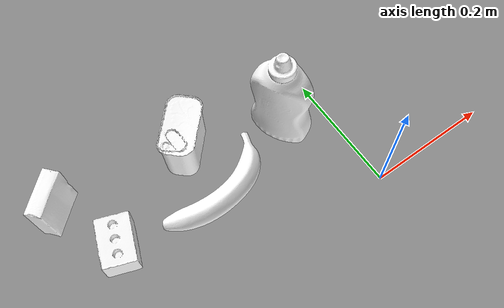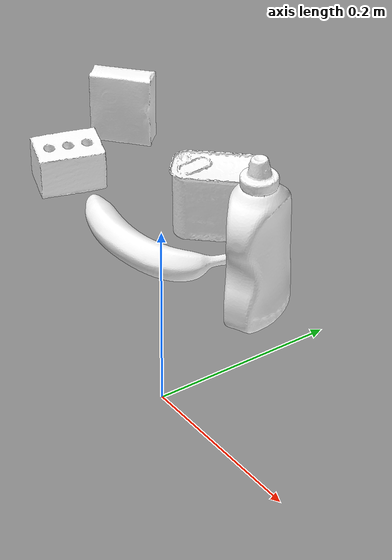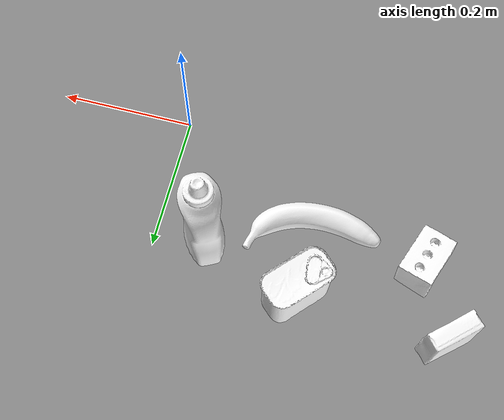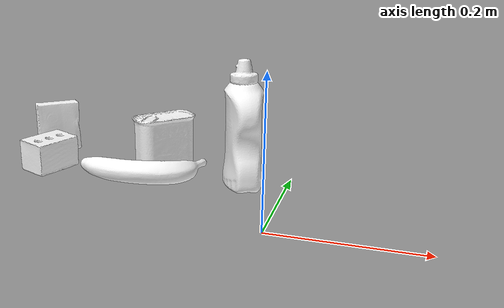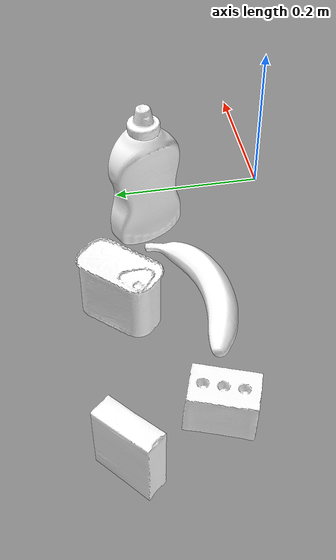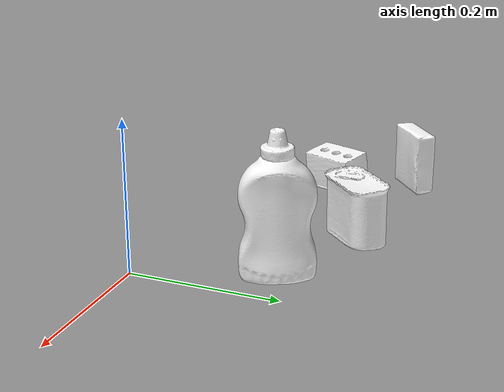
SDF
<sdf version="1.6">
  <world name="default">
    <gravity>0 0 -9.8</gravity>
    <model name="YcbBanana">
      <pose frame=''>-0.196 0.11794 0.005 0 0 -2.9845</pose>
      <contact>
        <lateral_friction>1</lateral_friction>
      </contact>
      <link name="baselink">
        <inertial>
          <mass>0.066</mass>
          <inertia>
            <ixx>1e-3</ixx>
            <ixy>0</ixy>
            <ixz>0</ixz>
            <iyy>1e-3</iyy>
            <iyz>0</iyz>
            <izz>1e-3</izz>
          </inertia>
        </inertial>
        <visual name="visual">
          <geometry>
            <mesh>
              <scale>1 1 1</scale>
              <uri>objects/YcbBanana/textured_simple_reoriented.obj</uri>
            </mesh>
          </geometry>
          <material>
            <ambient>1 1 1 1</ambient>
            <diffuse>1.00000 1.00000 1.000000 1</diffuse>
            <specular>.5 .5 .5 1</specular>
            <emissive>0 0 0 0</emissive>
          </material>
        </visual>
        <collision name="collision">
          <geometry>
            <mesh>
              <scale>1 1 1</scale>
              <uri>objects/YcbBanana/textured_simple_reoriented.obj</uri>
            </mesh>
          </geometry>
        </collision>
      </link>
    </model>
    <model name="YcbMustardBottle">
      <pose frame=''>-0.07479 0.161 0.08 0 0 1.9390639</pose>
      <contact>
        <lateral_friction>1</lateral_friction>
      </contact>
      <link name="baselink">
        <inertial>
          <mass>0.603</mass>
          <inertia>
            <ixx>1e-3</ixx>
            <ixy>0</ixy>
            <ixz>0</ixz>
            <iyy>1e-3</iyy>
            <iyz>0</iyz>
            <izz>1e-3</izz>
          </inertia>
        </inertial>
        <visual name="visual">
          <geometry>
            <mesh>
              <scale>1 1 1</scale>
              <uri>objects/YcbMustardBottle/textured_simple_reoriented.obj</uri>
            </mesh>
          </geometry>
          <material>
            <ambient>1 1 1 1</ambient>
            <diffuse>1.00000 1.00000 1.000000 1</diffuse>
            <specular>.5 .5 .5 1</specular>
            <emissive>0 0 0 0</emissive>
          </material>
        </visual>
        <collision name="collision">
          <geometry>
            <mesh>
              <scale>1 1 1</scale>
              <uri>objects/YcbMustardBottle/textured_simple_reoriented.obj</uri>
            </mesh>
          </geometry>
        </collision>
      </link>
    </model>
    <model name="YcbPottedMeatCan">
      <pose frame=''>-0.229 0.224 0.047 0 0 -1.7217114</pose>
      <contact>
        <lateral_friction>1</lateral_friction>
      </contact>
      <link name="baselink">
        <inertial>
          <pose frame=''>0 0 -0.2 0 0 0</pose>
          <mass>0.370</mass>
          <inertia>
            <ixx>1e-3</ixx>
            <ixy>0</ixy>
            <ixz>0</ixz>
            <iyy>1e-3</iyy>
            <iyz>0</iyz>
            <izz>1e-3</izz>
          </inertia>
        </inertial>
        <visual name="visual">
          <geometry>
            <mesh>
              <scale>1 1 1</scale>
              <uri>objects/YcbPottedMeatCan/textured_simple_reoriented.obj</uri>
            </mesh>
          </geometry>
          <material>
            <ambient>1 1 1 1</ambient>
            <diffuse>1.00000 1.00000 1.000000 1</diffuse>
            <specular>.5 .5 .5 1</specular>
            <emissive>0 0 0 0</emissive>
          </material>
        </visual>
        <collision name="collision">
          <geometry>
            <mesh>
              <scale>1 1 1</scale>
              <uri>objects/YcbPottedMeatCan/textured_simple_reoriented.obj</uri>
            </mesh>
          </geometry>
        </collision>
      </link>
    </model>
    <model name="YcbGelatinBox">
      <pose frame=''>-0.430 0.23849 0.01 0 0 0</pose>
      <contact>
        <lateral_friction>1</lateral_friction>
      </contact>
      <link name="baselink">
        <inertial>
          <mass>0.097</mass>
          <inertia>
            <ixx>1e-3</ixx>
            <ixy>0</ixy>
            <ixz>0</ixz>
            <iyy>1e-3</iyy>
            <iyz>0</iyz>
            <izz>1e-3</izz>
          </inertia>
        </inertial>
        <visual name="visual">
          <geometry>
            <mesh>
              <scale>1 1 1</scale>
              <uri>objects/YcbGelatinBox/textured_simple_reoriented.obj</uri>
            </mesh>
          </geometry>
          <material>
            <ambient>1 1 1 1</ambient>
            <diffuse>1.00000 1.00000 1.000000 1</diffuse>
            <specular>.5 .5 .5 1</specular>
            <emissive>0 0 0 0</emissive>
          </material>
        </visual>
        <collision name="collision">
          <geometry>
            <mesh>
              <scale>1 1 1</scale>
              <uri>objects/YcbGelatinBox/textured_simple_reoriented.obj</uri>
            </mesh>
          </geometry>
        </collision>
      </link>
    </model>
    <model name="YcbFoamBrick">
      <pose frame=''>-0.374 0.13899 0.018 0 0 0</pose>
      <contact>
        <lateral_friction>1</lateral_friction>
      </contact>
      <link name="baselink">
        <inertial>
          <mass>0.028</mass>
          <inertia>
            <ixx>1e-3</ixx>
            <ixy>0</ixy>
            <ixz>0</ixz>
            <iyy>1e-3</iyy>
            <iyz>0</iyz>
            <izz>1e-3</izz>
          </inertia>
        </inertial>
        <visual name="visual">
          <geometry>
            <mesh>
              <scale>1 1 1</scale>
              <uri>objects/YcbFoamBrick/textured_simple_reoriented.obj</uri>
            </mesh>
          </geometry>
          <material>
            <ambient>1 1 1 1</ambient>
            <diffuse>1.00000 1.00000 1.000000 1</diffuse>
            <specular>.5 .5 .5 1</specular>
            <emissive>0 0 0 0</emissive>
          </material>
        </visual>
        <collision name="collision">
          <geometry>
            <mesh>
              <scale>1 1 1</scale>
              <uri>objects/YcbFoamBrick/textured_simple_reoriented.obj</uri>
            </mesh>
          </geometry>
        </collision>
      </link>
    </model>
  </world>
</sdf>
